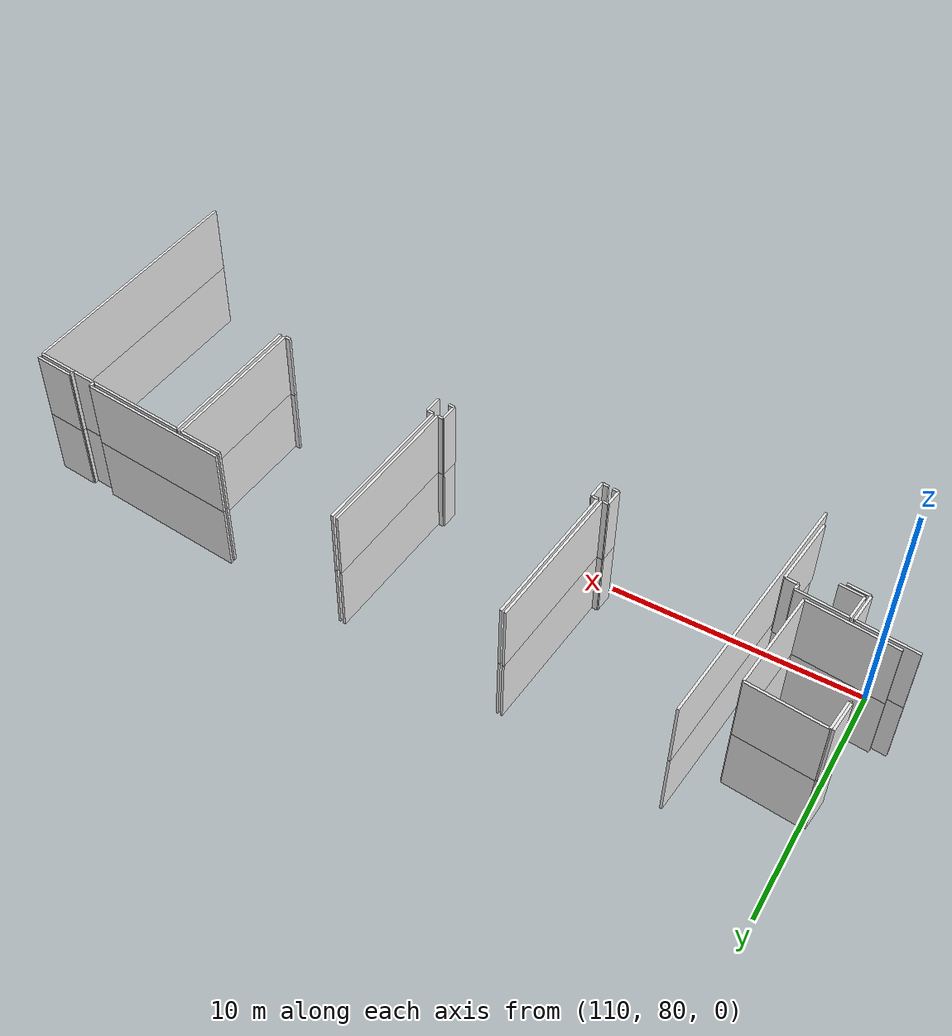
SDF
<sdf version="1.6">
 <world name="default">
  <model name="wall_134.8_82.6_1.5">
   <static>true</static>
   <pose>134.79000000000815 82.63500000000931 1.5 0 0 1.4692789369105257</pose>
   <link name="link">
    <visual name="visual">
     <geometry><box><size>5.920481399479087 0.1 3</size></box></geometry>
     <material>
      <script><uri>file://media/materials/scripts/gazebo.material</uri><name>Gazebo/White</name></script>
     </material>
    </visual>
    <collision name="collision"><geometry><box><size>5.920481399479087 0.1 3</size></box></geometry></collision>
   </link>
  </model>
  <model name="wall_137.1_85.4_1.5">
   <static>true</static>
   <pose>137.07000000000698 85.38000000012107 1.5 0 0 -0.10066865213548881</pose>
   <link name="link">
    <visual name="visual">
     <geometry><box><size>3.9801507508674154 0.1 3</size></box></geometry>
     <material>
      <script><uri>file://media/materials/scripts/gazebo.material</uri><name>Gazebo/White</name></script>
     </material>
    </visual>
    <collision name="collision"><geometry><box><size>3.9801507508674154 0.1 3</size></box></geometry></collision>
   </link>
  </model>
  <model name="wall_139.5_85.1_1.5">
   <static>true</static>
   <pose>139.54999999998836 85.13000000012107 1.5 0 0 -0.09966865258337218</pose>
   <link name="link">
    <visual name="visual">
     <geometry><box><size>1.004987562121356 0.1 3</size></box></geometry>
     <material>
      <script><uri>file://media/materials/scripts/gazebo.material</uri><name>Gazebo/White</name></script>
     </material>
    </visual>
    <collision name="collision"><geometry><box><size>1.004987562121356 0.1 3</size></box></geometry></collision>
   </link>
  </model>
  <model name="wall_140.8_85.0_1.5">
   <static>true</static>
   <pose>140.82499999998254 85.0 1.5 0 0 -0.10286148975795871</pose>
   <link name="link">
    <visual name="visual">
     <geometry><box><size>1.5582361823586293 0.1 3</size></box></geometry>
     <material>
      <script><uri>file://media/materials/scripts/gazebo.material</uri><name>Gazebo/White</name></script>
     </material>
    </visual>
    <collision name="collision"><geometry><box><size>1.5582361823586293 0.1 3</size></box></geometry></collision>
   </link>
  </model>
  <model name="wall_141.1_80.0_1.5">
   <static>true</static>
   <pose>141.10499999998137 79.98999999999069 1.5 0 0 -1.670866626016522</pose>
   <link name="link">
    <visual name="visual">
     <geometry><box><size>9.909576176477497 0.1 3</size></box></geometry>
     <material>
      <script><uri>file://media/materials/scripts/gazebo.material</uri><name>Gazebo/White</name></script>
     </material>
    </visual>
    <collision name="collision"><geometry><box><size>9.909576176477497 0.1 3</size></box></geometry></collision>
   </link>
  </model>
  <model name="wall_134.2_79.7_1.5">
   <static>true</static>
   <pose>134.15500000002794 79.72500000009313 1.5 0 0 -0.11942892704661259</pose>
   <link name="link">
    <visual name="visual">
     <geometry><box><size>0.25179356627135296 0.1 3</size></box></geometry>
     <material>
      <script><uri>file://media/materials/scripts/gazebo.material</uri><name>Gazebo/White</name></script>
     </material>
    </visual>
    <collision name="collision"><geometry><box><size>0.25179356627135296 0.1 3</size></box></geometry></collision>
   </link>
  </model>
  <model name="wall_134.6_82.7_1.5">
   <static>true</static>
   <pose>134.5800000000163 82.65999999991618 1.5 0 0 1.4694498235315459</pose>
   <link name="link">
    <visual name="visual">
     <geometry><box><size>5.9304300011780855 0.1 3</size></box></geometry>
     <material>
      <script><uri>file://media/materials/scripts/gazebo.material</uri><name>Gazebo/White</name></script>
     </material>
    </visual>
    <collision name="collision"><geometry><box><size>5.9304300011780855 0.1 3</size></box></geometry></collision>
   </link>
  </model>
  <model name="wall_134.0_85.7_1.5">
   <static>true</static>
   <pose>133.98000000001048 85.69999999995343 1.5 0 0 3.0419240010057806</pose>
   <link name="link">
    <visual name="visual">
     <geometry><box><size>1.808977611806857 0.1 3</size></box></geometry>
     <material>
      <script><uri>file://media/materials/scripts/gazebo.material</uri><name>Gazebo/White</name></script>
     </material>
    </visual>
    <collision name="collision"><geometry><box><size>1.808977611806857 0.1 3</size></box></geometry></collision>
   </link>
  </model>
  <model name="wall_127.8_83.3_1.5">
   <static>true</static>
   <pose>127.79999999998836 83.34499999997206 1.5 0 0 -1.6719725158339418</pose>
   <link name="link">
    <visual name="visual">
     <geometry><box><size>5.940378775484714 0.1 3</size></box></geometry>
     <material>
      <script><uri>file://media/materials/scripts/gazebo.material</uri><name>Gazebo/White</name></script>
     </material>
    </visual>
    <collision name="collision"><geometry><box><size>5.940378775484714 0.1 3</size></box></geometry></collision>
   </link>
  </model>
  <model name="wall_127.6_80.4_1.5">
   <static>true</static>
   <pose>127.625 80.375 1.5 0 0 -0.11942892704661259</pose>
   <link name="link">
    <visual name="visual">
     <geometry><box><size>0.25179356627135296 0.1 3</size></box></geometry>
     <material>
      <script><uri>file://media/materials/scripts/gazebo.material</uri><name>Gazebo/White</name></script>
     </material>
    </visual>
    <collision name="collision"><geometry><box><size>0.25179356627135296 0.1 3</size></box></geometry></collision>
   </link>
  </model>
  <model name="wall_127.7_80.0_1.5">
   <static>true</static>
   <pose>127.71499999999651 80.01499999989755 1.5 0 0 -1.6718996985493473</pose>
   <link name="link">
    <visual name="visual">
     <geometry><box><size>0.693541635321099 0.1 3</size></box></geometry>
     <material>
      <script><uri>file://media/materials/scripts/gazebo.material</uri><name>Gazebo/White</name></script>
     </material>
    </visual>
    <collision name="collision"><geometry><box><size>0.693541635321099 0.1 3</size></box></geometry></collision>
   </link>
  </model>
  <model name="wall_113.3_81.1_1.5">
   <static>true</static>
   <pose>113.2949999999837 81.125 1.5 0 0 3.0438657465945953</pose>
   <link name="link">
    <visual name="visual">
     <geometry><box><size>0.512445119003853 0.1 3</size></box></geometry>
     <material>
      <script><uri>file://media/materials/scripts/gazebo.material</uri><name>Gazebo/White</name></script>
     </material>
    </visual>
    <collision name="collision"><geometry><box><size>0.512445119003853 0.1 3</size></box></geometry></collision>
   </link>
  </model>
  <model name="wall_113.1_81.3_1.5">
   <static>true</static>
   <pose>113.05499999999302 81.27499999990687 1.5 0 0 1.451367400666386</pose>
   <link name="link">
    <visual name="visual">
     <geometry><box><size>0.2517935662436123 0.1 3</size></box></geometry>
     <material>
      <script><uri>file://media/materials/scripts/gazebo.material</uri><name>Gazebo/White</name></script>
     </material>
    </visual>
    <collision name="collision"><geometry><box><size>0.2517935662436123 0.1 3</size></box></geometry></collision>
   </link>
  </model>
  <model name="wall_112.1_81.5_1.5">
   <static>true</static>
   <pose>112.05000000001746 81.5 1.5 0 0 3.04386574613964</pose>
   <link name="link">
    <visual name="visual">
     <geometry><box><size>2.0497804760483525 0.1 3</size></box></geometry>
     <material>
      <script><uri>file://media/materials/scripts/gazebo.material</uri><name>Gazebo/White</name></script>
     </material>
    </visual>
    <collision name="collision"><geometry><box><size>2.0497804760483525 0.1 3</size></box></geometry></collision>
   </link>
  </model>
  <model name="wall_111.0_81.1_1.5">
   <static>true</static>
   <pose>110.97500000000582 81.0800000000745 1.5 0 0 -1.676173766022158</pose>
   <link name="link">
    <visual name="visual">
     <geometry><box><size>1.0458011283639057 0.1 3</size></box></geometry>
     <material>
      <script><uri>file://media/materials/scripts/gazebo.material</uri><name>Gazebo/White</name></script>
     </material>
    </visual>
    <collision name="collision"><geometry><box><size>1.0458011283639057 0.1 3</size></box></geometry></collision>
   </link>
  </model>
  <model name="wall_111.4_80.5_1.5">
   <static>true</static>
   <pose>111.39499999998952 80.51500000013039 1.5 0 0 -0.09445493523843698</pose>
   <link name="link">
    <visual name="visual">
     <geometry><box><size>0.9542536350443193 0.1 3</size></box></geometry>
     <material>
      <script><uri>file://media/materials/scripts/gazebo.material</uri><name>Gazebo/White</name></script>
     </material>
    </visual>
    <collision name="collision"><geometry><box><size>0.9542536350443193 0.1 3</size></box></geometry></collision>
   </link>
  </model>
  <model name="wall_109.7_81.7_1.5">
   <static>true</static>
   <pose>109.6699999999837 81.73999999999069 1.5 0 0 3.041924001199486</pose>
   <link name="link">
    <visual name="visual">
     <geometry><box><size>2.411970149068087 0.1 3</size></box></geometry>
     <material>
      <script><uri>file://media/materials/scripts/gazebo.material</uri><name>Gazebo/White</name></script>
     </material>
    </visual>
    <collision name="collision"><geometry><box><size>2.411970149068087 0.1 3</size></box></geometry></collision>
   </link>
  </model>
  <model name="wall_111.2_80.4_1.5">
   <static>true</static>
   <pose>111.20000000001164 80.38500000000931 1.5 0 0 3.041924000752843</pose>
   <link name="link">
    <visual name="visual">
     <geometry><box><size>0.9044888059555555 0.1 3</size></box></geometry>
     <material>
      <script><uri>file://media/materials/scripts/gazebo.material</uri><name>Gazebo/White</name></script>
     </material>
    </visual>
    <collision name="collision"><geometry><box><size>0.9044888059555555 0.1 3</size></box></geometry></collision>
   </link>
  </model>
  <model name="wall_110.8_81.0_1.5">
   <static>true</static>
   <pose>110.80999999999767 81.0250000001397 1.5 0 0 1.470295727739453</pose>
   <link name="link">
    <visual name="visual">
     <geometry><box><size>1.1960351164852516 0.1 3</size></box></geometry>
     <material>
      <script><uri>file://media/materials/scripts/gazebo.material</uri><name>Gazebo/White</name></script>
     </material>
    </visual>
    <collision name="collision"><geometry><box><size>1.1960351164852516 0.1 3</size></box></geometry></collision>
   </link>
  </model>
  <model name="wall_109.8_85.4_1.5">
   <static>true</static>
   <pose>109.79999999998836 85.36500000022352 1.5 0 0 -1.666503034878009</pose>
   <link name="link">
    <visual name="visual">
     <geometry><box><size>1.2557467897625232 0.1 3</size></box></geometry>
     <material>
      <script><uri>file://media/materials/scripts/gazebo.material</uri><name>Gazebo/White</name></script>
     </material>
    </visual>
    <collision name="collision"><geometry><box><size>1.2557467897625232 0.1 3</size></box></geometry></collision>
   </link>
  </model>
  <model name="wall_109.8_84.7_1.5">
   <static>true</static>
   <pose>109.78500000000349 84.73500000010245 1.5 0 0 -0.11065722380033888</pose>
   <link name="link">
    <visual name="visual">
     <geometry><box><size>0.0905538514335692 0.1 3</size></box></geometry>
     <material>
      <script><uri>file://media/materials/scripts/gazebo.material</uri><name>Gazebo/White</name></script>
     </material>
    </visual>
    <collision name="collision"><geometry><box><size>0.0905538514335692 0.1 3</size></box></geometry></collision>
   </link>
  </model>
  <model name="wall_109.9_85.4_1.5">
   <static>true</static>
   <pose>109.89500000001863 85.35499999998137 1.5 0 0 1.4671688667943394</pose>
   <link name="link">
    <visual name="visual">
     <geometry><box><size>1.2567418191503021 0.1 3</size></box></geometry>
     <material>
      <script><uri>file://media/materials/scripts/gazebo.material</uri><name>Gazebo/White</name></script>
     </material>
    </visual>
    <collision name="collision"><geometry><box><size>1.2567418191503021 0.1 3</size></box></geometry></collision>
   </link>
  </model>
  <model name="wall_111.5_85.8_1.5">
   <static>true</static>
   <pose>111.50500000000466 85.82000000006519 1.5 0 0 -0.10319202030580511</pose>
   <link name="link">
    <visual name="visual">
     <geometry><box><size>3.1065253901571874 0.1 3</size></box></geometry>
     <material>
      <script><uri>file://media/materials/scripts/gazebo.material</uri><name>Gazebo/White</name></script>
     </material>
    </visual>
    <collision name="collision"><geometry><box><size>3.1065253901571874 0.1 3</size></box></geometry></collision>
   </link>
  </model>
  <model name="wall_112.8_83.7_1.5">
   <static>true</static>
   <pose>112.84500000000116 83.65500000002794 1.5 0 0 -1.6726866492791923</pose>
   <link name="link">
    <visual name="visual">
     <geometry><box><size>4.0309056056823005 0.1 3</size></box></geometry>
     <material>
      <script><uri>file://media/materials/scripts/gazebo.material</uri><name>Gazebo/White</name></script>
     </material>
    </visual>
    <collision name="collision"><geometry><box><size>4.0309056056823005 0.1 3</size></box></geometry></collision>
   </link>
  </model>
  <model name="wall_110.9_81.8_1.5">
   <static>true</static>
   <pose>110.85000000000582 81.82999999984168 1.5 0 0 3.041370903846408</pose>
   <link name="link">
    <visual name="visual">
     <geometry><box><size>3.5980550301548777 0.1 3</size></box></geometry>
     <material>
      <script><uri>file://media/materials/scripts/gazebo.material</uri><name>Gazebo/White</name></script>
     </material>
    </visual>
    <collision name="collision"><geometry><box><size>3.5980550301548777 0.1 3</size></box></geometry></collision>
   </link>
  </model>
  <model name="wall_127.1_79.7_1.5">
   <static>true</static>
   <pose>127.10999999998603 79.7300000002142 1.5 0 0 3.0584514216210654</pose>
   <link name="link">
    <visual name="visual">
     <geometry><box><size>0.2408318915681117 0.1 3</size></box></geometry>
     <material>
      <script><uri>file://media/materials/scripts/gazebo.material</uri><name>Gazebo/White</name></script>
     </material>
    </visual>
    <collision name="collision"><geometry><box><size>0.2408318915681117 0.1 3</size></box></geometry></collision>
   </link>
  </model>
  <model name="wall_127.0_80.1_1.5">
   <static>true</static>
   <pose>127.02499999999418 80.08500000019558 1.5 0 0 1.469692955040446</pose>
   <link name="link">
    <visual name="visual">
     <geometry><box><size>0.693541635321099 0.1 3</size></box></geometry>
     <material>
      <script><uri>file://media/materials/scripts/gazebo.material</uri><name>Gazebo/White</name></script>
     </material>
    </visual>
    <collision name="collision"><geometry><box><size>0.693541635321099 0.1 3</size></box></geometry></collision>
   </link>
  </model>
  <model name="wall_127.2_80.4_1.5">
   <static>true</static>
   <pose>127.17999999999302 80.42000000015832 1.5 0 0 -0.08314123196872766</pose>
   <link name="link">
    <visual name="visual">
     <geometry><box><size>0.2408318915681117 0.1 3</size></box></geometry>
     <material>
      <script><uri>file://media/materials/scripts/gazebo.material</uri><name>Gazebo/White</name></script>
     </material>
    </visual>
    <collision name="collision"><geometry><box><size>0.2408318915681117 0.1 3</size></box></geometry></collision>
   </link>
  </model>
  <model name="wall_127.6_83.4_1.5">
   <static>true</static>
   <pose>127.60000000000582 83.36499999999069 1.5 0 0 1.469620137746103</pose>
   <link name="link">
    <visual name="visual">
     <geometry><box><size>5.940378775490593 0.1 3</size></box></geometry>
     <material>
      <script><uri>file://media/materials/scripts/gazebo.material</uri><name>Gazebo/White</name></script>
     </material>
    </visual>
    <collision name="collision"><geometry><box><size>5.940378775490593 0.1 3</size></box></geometry></collision>
   </link>
  </model>
  <model name="wall_120.8_84.0_1.5">
   <static>true</static>
   <pose>120.82000000000698 84.0449999999255 1.5 0 0 -1.6719725158260241</pose>
   <link name="link">
    <visual name="visual">
     <geometry><box><size>5.940378775947993 0.1 3</size></box></geometry>
     <material>
      <script><uri>file://media/materials/scripts/gazebo.material</uri><name>Gazebo/White</name></script>
     </material>
    </visual>
    <collision name="collision"><geometry><box><size>5.940378775947993 0.1 3</size></box></geometry></collision>
   </link>
  </model>
  <model name="wall_120.6_81.1_1.5">
   <static>true</static>
   <pose>120.64500000001863 81.07999999984168 1.5 0 0 -0.07982998578626932</pose>
   <link name="link">
    <visual name="visual">
     <geometry><box><size>0.25079872408117443 0.1 3</size></box></geometry>
     <material>
      <script><uri>file://media/materials/scripts/gazebo.material</uri><name>Gazebo/White</name></script>
     </material>
    </visual>
    <collision name="collision"><geometry><box><size>0.25079872408117443 0.1 3</size></box></geometry></collision>
   </link>
  </model>
  <model name="wall_120.7_80.7_1.5">
   <static>true</static>
   <pose>120.73500000001513 80.71999999997206 1.5 0 0 -1.670464979335457</pose>
   <link name="link">
    <visual name="visual">
     <geometry><box><size>0.7034912932011471 0.1 3</size></box></geometry>
     <material>
      <script><uri>file://media/materials/scripts/gazebo.material</uri><name>Gazebo/White</name></script>
     </material>
    </visual>
    <collision name="collision"><geometry><box><size>0.7034912932011471 0.1 3</size></box></geometry></collision>
   </link>
  </model>
  <model name="wall_120.6_80.4_1.5">
   <static>true</static>
   <pose>120.57500000001164 80.38500000000931 1.5 0 0 3.0221637283793843</pose>
   <link name="link">
    <visual name="visual">
     <geometry><box><size>0.2517935662158716 0.1 3</size></box></geometry>
     <material>
      <script><uri>file://media/materials/scripts/gazebo.material</uri><name>Gazebo/White</name></script>
     </material>
    </visual>
    <collision name="collision"><geometry><box><size>0.2517935662158716 0.1 3</size></box></geometry></collision>
   </link>
  </model>
  <model name="wall_120.2_80.4_1.5">
   <static>true</static>
   <pose>120.15500000002794 80.42999999993481 1.5 0 0 3.061762667803524</pose>
   <link name="link">
    <visual name="visual">
     <geometry><box><size>0.25079872408117443 0.1 3</size></box></geometry>
     <material>
      <script><uri>file://media/materials/scripts/gazebo.material</uri><name>Gazebo/White</name></script>
     </material>
    </visual>
    <collision name="collision"><geometry><box><size>0.25079872408117443 0.1 3</size></box></geometry></collision>
   </link>
  </model>
  <model name="wall_120.1_80.8_1.5">
   <static>true</static>
   <pose>120.06500000000233 80.78499999991618 1.5 0 0 1.4696929551239455</pose>
   <link name="link">
    <visual name="visual">
     <geometry><box><size>0.6935416353152241 0.1 3</size></box></geometry>
     <material>
      <script><uri>file://media/materials/scripts/gazebo.material</uri><name>Gazebo/White</name></script>
     </material>
    </visual>
    <collision name="collision"><geometry><box><size>0.6935416353152241 0.1 3</size></box></geometry></collision>
   </link>
  </model>
  <model name="wall_120.2_81.1_1.5">
   <static>true</static>
   <pose>120.22499999997672 81.11999999987893 1.5 0 0 -0.07982998578626932</pose>
   <link name="link">
    <visual name="visual">
     <geometry><box><size>0.25079872408117443 0.1 3</size></box></geometry>
     <material>
      <script><uri>file://media/materials/scripts/gazebo.material</uri><name>Gazebo/White</name></script>
     </material>
    </visual>
    <collision name="collision"><geometry><box><size>0.25079872408117443 0.1 3</size></box></geometry></collision>
   </link>
  </model>
  <model name="wall_120.6_84.1_1.5">
   <static>true</static>
   <pose>120.64999999999418 84.06499999994412 1.5 0 0 1.4696201377540206</pose>
   <link name="link">
    <visual name="visual">
     <geometry><box><size>5.940378775953872 0.1 3</size></box></geometry>
     <material>
      <script><uri>file://media/materials/scripts/gazebo.material</uri><name>Gazebo/White</name></script>
     </material>
    </visual>
    <collision name="collision"><geometry><box><size>5.940378775953872 0.1 3</size></box></geometry></collision>
   </link>
  </model>
  <model name="wall_113.9_82.7_1.5">
   <static>true</static>
   <pose>113.90999999997439 82.73999999999069 1.5 0 0 -1.6716673835126197</pose>
   <link name="link">
    <visual name="visual">
     <geometry><box><size>9.93047833727022 0.1 3</size></box></geometry>
     <material>
      <script><uri>file://media/materials/scripts/gazebo.material</uri><name>Gazebo/White</name></script>
     </material>
    </visual>
    <collision name="collision"><geometry><box><size>9.93047833727022 0.1 3</size></box></geometry></collision>
   </link>
  </model>
  <model name="wall_136.1_85.7_1.5">
   <static>true</static>
   <pose>136.08499999999185 85.67999999993481 1.5 0 0 -0.1001661649028647</pose>
   <link name="link">
    <visual name="visual">
     <geometry><box><size>6.0000749995706855 0.1 3</size></box></geometry>
     <material>
      <script><uri>file://media/materials/scripts/gazebo.material</uri><name>Gazebo/White</name></script>
     </material>
    </visual>
    <collision name="collision"><geometry><box><size>6.0000749995706855 0.1 3</size></box></geometry></collision>
   </link>
  </model>
  <model name="wall_139.1_85.3_1.5">
   <static>true</static>
   <pose>139.05999999999767 85.28000000002794 1.5 0 0 -1.670464979516584</pose>
   <link name="link">
    <visual name="visual">
     <geometry><box><size>0.20099751214626105 0.1 3</size></box></geometry>
     <material>
      <script><uri>file://media/materials/scripts/gazebo.material</uri><name>Gazebo/White</name></script>
     </material>
    </visual>
    <collision name="collision"><geometry><box><size>0.20099751214626105 0.1 3</size></box></geometry></collision>
   </link>
  </model>
  <model name="wall_140.1_85.2_1.5">
   <static>true</static>
   <pose>140.05999999999767 85.17999999993481 1.5 0 0 1.471127674073209</pose>
   <link name="link">
    <visual name="visual">
     <geometry><box><size>0.20099751214626105 0.1 3</size></box></geometry>
     <material>
      <script><uri>file://media/materials/scripts/gazebo.material</uri><name>Gazebo/White</name></script>
     </material>
    </visual>
    <collision name="collision"><geometry><box><size>0.20099751214626105 0.1 3</size></box></geometry></collision>
   </link>
  </model>
  <model name="wall_140.8_85.2_1.5">
   <static>true</static>
   <pose>140.84500000000116 85.19999999995343 1.5 0 0 -0.10286148946069955</pose>
   <link name="link">
    <visual name="visual">
     <geometry><box><size>1.558236182310815 0.1 3</size></box></geometry>
     <material>
      <script><uri>file://media/materials/scripts/gazebo.material</uri><name>Gazebo/White</name></script>
     </material>
    </visual>
    <collision name="collision"><geometry><box><size>1.558236182310815 0.1 3</size></box></geometry></collision>
   </link>
  </model>
  <model name="wall_134.8_82.6_4.5">
   <static>true</static>
   <pose>134.79000000000815 82.63500000000931 4.5 0 0 1.4692789369105257</pose>
   <link name="link">
    <visual name="visual">
     <geometry><box><size>5.920481399479087 0.1 3</size></box></geometry>
     <material>
      <script><uri>file://media/materials/scripts/gazebo.material</uri><name>Gazebo/White</name></script>
     </material>
    </visual>
    <collision name="collision"><geometry><box><size>5.920481399479087 0.1 3</size></box></geometry></collision>
   </link>
  </model>
  <model name="wall_137.1_85.4_4.5">
   <static>true</static>
   <pose>137.07000000000698 85.38000000012107 4.5 0 0 -0.10066865213548881</pose>
   <link name="link">
    <visual name="visual">
     <geometry><box><size>3.9801507508674154 0.1 3</size></box></geometry>
     <material>
      <script><uri>file://media/materials/scripts/gazebo.material</uri><name>Gazebo/White</name></script>
     </material>
    </visual>
    <collision name="collision"><geometry><box><size>3.9801507508674154 0.1 3</size></box></geometry></collision>
   </link>
  </model>
  <model name="wall_139.5_85.1_4.5">
   <static>true</static>
   <pose>139.54999999998836 85.13000000012107 4.5 0 0 -0.09966865258337218</pose>
   <link name="link">
    <visual name="visual">
     <geometry><box><size>1.004987562121356 0.1 3</size></box></geometry>
     <material>
      <script><uri>file://media/materials/scripts/gazebo.material</uri><name>Gazebo/White</name></script>
     </material>
    </visual>
    <collision name="collision"><geometry><box><size>1.004987562121356 0.1 3</size></box></geometry></collision>
   </link>
  </model>
  <model name="wall_140.8_85.0_4.5">
   <static>true</static>
   <pose>140.82499999998254 85.0 4.5 0 0 -0.10286148975795871</pose>
   <link name="link">
    <visual name="visual">
     <geometry><box><size>1.5582361823586293 0.1 3</size></box></geometry>
     <material>
      <script><uri>file://media/materials/scripts/gazebo.material</uri><name>Gazebo/White</name></script>
     </material>
    </visual>
    <collision name="collision"><geometry><box><size>1.5582361823586293 0.1 3</size></box></geometry></collision>
   </link>
  </model>
  <model name="wall_141.1_80.0_4.5">
   <static>true</static>
   <pose>141.10499999998137 79.98999999999069 4.5 0 0 -1.670866626016522</pose>
   <link name="link">
    <visual name="visual">
     <geometry><box><size>9.909576176477497 0.1 3</size></box></geometry>
     <material>
      <script><uri>file://media/materials/scripts/gazebo.material</uri><name>Gazebo/White</name></script>
     </material>
    </visual>
    <collision name="collision"><geometry><box><size>9.909576176477497 0.1 3</size></box></geometry></collision>
   </link>
  </model>
  <model name="wall_134.2_79.7_4.5">
   <static>true</static>
   <pose>134.15500000002794 79.72500000009313 4.5 0 0 -0.11942892704661259</pose>
   <link name="link">
    <visual name="visual">
     <geometry><box><size>0.25179356627135296 0.1 3</size></box></geometry>
     <material>
      <script><uri>file://media/materials/scripts/gazebo.material</uri><name>Gazebo/White</name></script>
     </material>
    </visual>
    <collision name="collision"><geometry><box><size>0.25179356627135296 0.1 3</size></box></geometry></collision>
   </link>
  </model>
  <model name="wall_134.6_82.7_4.5">
   <static>true</static>
   <pose>134.5800000000163 82.65999999991618 4.5 0 0 1.4694498235315459</pose>
   <link name="link">
    <visual name="visual">
     <geometry><box><size>5.9304300011780855 0.1 3</size></box></geometry>
     <material>
      <script><uri>file://media/materials/scripts/gazebo.material</uri><name>Gazebo/White</name></script>
     </material>
    </visual>
    <collision name="collision"><geometry><box><size>5.9304300011780855 0.1 3</size></box></geometry></collision>
   </link>
  </model>
  <model name="wall_134.0_85.7_4.5">
   <static>true</static>
   <pose>133.98000000001048 85.69999999995343 4.5 0 0 3.0419240010057806</pose>
   <link name="link">
    <visual name="visual">
     <geometry><box><size>1.808977611806857 0.1 3</size></box></geometry>
     <material>
      <script><uri>file://media/materials/scripts/gazebo.material</uri><name>Gazebo/White</name></script>
     </material>
    </visual>
    <collision name="collision"><geometry><box><size>1.808977611806857 0.1 3</size></box></geometry></collision>
   </link>
  </model>
  <model name="wall_127.8_83.3_4.5">
   <static>true</static>
   <pose>127.79999999998836 83.34499999997206 4.5 0 0 -1.6719725158339418</pose>
   <link name="link">
    <visual name="visual">
     <geometry><box><size>5.940378775484714 0.1 3</size></box></geometry>
     <material>
      <script><uri>file://media/materials/scripts/gazebo.material</uri><name>Gazebo/White</name></script>
     </material>
    </visual>
    <collision name="collision"><geometry><box><size>5.940378775484714 0.1 3</size></box></geometry></collision>
   </link>
  </model>
  <model name="wall_127.6_80.4_4.5">
   <static>true</static>
   <pose>127.625 80.375 4.5 0 0 -0.11942892704661259</pose>
   <link name="link">
    <visual name="visual">
     <geometry><box><size>0.25179356627135296 0.1 3</size></box></geometry>
     <material>
      <script><uri>file://media/materials/scripts/gazebo.material</uri><name>Gazebo/White</name></script>
     </material>
    </visual>
    <collision name="collision"><geometry><box><size>0.25179356627135296 0.1 3</size></box></geometry></collision>
   </link>
  </model>
  <model name="wall_127.7_80.0_4.5">
   <static>true</static>
   <pose>127.71499999999651 80.01499999989755 4.5 0 0 -1.6718996985493473</pose>
   <link name="link">
    <visual name="visual">
     <geometry><box><size>0.693541635321099 0.1 3</size></box></geometry>
     <material>
      <script><uri>file://media/materials/scripts/gazebo.material</uri><name>Gazebo/White</name></script>
     </material>
    </visual>
    <collision name="collision"><geometry><box><size>0.693541635321099 0.1 3</size></box></geometry></collision>
   </link>
  </model>
  <model name="wall_113.4_79.7_4.5">
   <static>true</static>
   <pose>113.40499999999884 79.70999999996275 4.5 0 0 1.4668557173961834</pose>
   <link name="link">
    <visual name="visual">
     <geometry><box><size>2.7950849721319257 0.1 3</size></box></geometry>
     <material>
      <script><uri>file://media/materials/scripts/gazebo.material</uri><name>Gazebo/White</name></script>
     </material>
    </visual>
    <collision name="collision"><geometry><box><size>2.7950849721319257 0.1 3</size></box></geometry></collision>
   </link>
  </model>
  <model name="wall_113.3_81.1_4.5">
   <static>true</static>
   <pose>113.2949999999837 81.125 4.5 0 0 3.0438657465945953</pose>
   <link name="link">
    <visual name="visual">
     <geometry><box><size>0.512445119003853 0.1 3</size></box></geometry>
     <material>
      <script><uri>file://media/materials/scripts/gazebo.material</uri><name>Gazebo/White</name></script>
     </material>
    </visual>
    <collision name="collision"><geometry><box><size>0.512445119003853 0.1 3</size></box></geometry></collision>
   </link>
  </model>
  <model name="wall_113.1_81.3_4.5">
   <static>true</static>
   <pose>113.05499999999302 81.27499999990687 4.5 0 0 1.451367400666386</pose>
   <link name="link">
    <visual name="visual">
     <geometry><box><size>0.2517935662436123 0.1 3</size></box></geometry>
     <material>
      <script><uri>file://media/materials/scripts/gazebo.material</uri><name>Gazebo/White</name></script>
     </material>
    </visual>
    <collision name="collision"><geometry><box><size>0.2517935662436123 0.1 3</size></box></geometry></collision>
   </link>
  </model>
  <model name="wall_112.1_81.5_4.5">
   <static>true</static>
   <pose>112.05000000001746 81.5 4.5 0 0 3.04386574613964</pose>
   <link name="link">
    <visual name="visual">
     <geometry><box><size>2.0497804760483525 0.1 3</size></box></geometry>
     <material>
      <script><uri>file://media/materials/scripts/gazebo.material</uri><name>Gazebo/White</name></script>
     </material>
    </visual>
    <collision name="collision"><geometry><box><size>2.0497804760483525 0.1 3</size></box></geometry></collision>
   </link>
  </model>
  <model name="wall_111.0_81.1_4.5">
   <static>true</static>
   <pose>110.97500000000582 81.0800000000745 4.5 0 0 -1.676173766022158</pose>
   <link name="link">
    <visual name="visual">
     <geometry><box><size>1.0458011283639057 0.1 3</size></box></geometry>
     <material>
      <script><uri>file://media/materials/scripts/gazebo.material</uri><name>Gazebo/White</name></script>
     </material>
    </visual>
    <collision name="collision"><geometry><box><size>1.0458011283639057 0.1 3</size></box></geometry></collision>
   </link>
  </model>
  <model name="wall_111.4_80.5_4.5">
   <static>true</static>
   <pose>111.39499999998952 80.51500000013039 4.5 0 0 -0.09445493523843698</pose>
   <link name="link">
    <visual name="visual">
     <geometry><box><size>0.9542536350443193 0.1 3</size></box></geometry>
     <material>
      <script><uri>file://media/materials/scripts/gazebo.material</uri><name>Gazebo/White</name></script>
     </material>
    </visual>
    <collision name="collision"><geometry><box><size>0.9542536350443193 0.1 3</size></box></geometry></collision>
   </link>
  </model>
  <model name="wall_109.7_81.7_4.5">
   <static>true</static>
   <pose>109.6699999999837 81.73999999999069 4.5 0 0 3.041924001199486</pose>
   <link name="link">
    <visual name="visual">
     <geometry><box><size>2.411970149068087 0.1 3</size></box></geometry>
     <material>
      <script><uri>file://media/materials/scripts/gazebo.material</uri><name>Gazebo/White</name></script>
     </material>
    </visual>
    <collision name="collision"><geometry><box><size>2.411970149068087 0.1 3</size></box></geometry></collision>
   </link>
  </model>
  <model name="wall_111.2_80.4_4.5">
   <static>true</static>
   <pose>111.20000000001164 80.38500000000931 4.5 0 0 3.041924000752843</pose>
   <link name="link">
    <visual name="visual">
     <geometry><box><size>0.9044888059555555 0.1 3</size></box></geometry>
     <material>
      <script><uri>file://media/materials/scripts/gazebo.material</uri><name>Gazebo/White</name></script>
     </material>
    </visual>
    <collision name="collision"><geometry><box><size>0.9044888059555555 0.1 3</size></box></geometry></collision>
   </link>
  </model>
  <model name="wall_110.8_81.0_4.5">
   <static>true</static>
   <pose>110.80999999999767 81.0250000001397 4.5 0 0 1.470295727739453</pose>
   <link name="link">
    <visual name="visual">
     <geometry><box><size>1.1960351164852516 0.1 3</size></box></geometry>
     <material>
      <script><uri>file://media/materials/scripts/gazebo.material</uri><name>Gazebo/White</name></script>
     </material>
    </visual>
    <collision name="collision"><geometry><box><size>1.1960351164852516 0.1 3</size></box></geometry></collision>
   </link>
  </model>
  <model name="wall_109.8_85.4_4.5">
   <static>true</static>
   <pose>109.79999999998836 85.36500000022352 4.5 0 0 -1.666503034878009</pose>
   <link name="link">
    <visual name="visual">
     <geometry><box><size>1.2557467897625232 0.1 3</size></box></geometry>
     <material>
      <script><uri>file://media/materials/scripts/gazebo.material</uri><name>Gazebo/White</name></script>
     </material>
    </visual>
    <collision name="collision"><geometry><box><size>1.2557467897625232 0.1 3</size></box></geometry></collision>
   </link>
  </model>
  <model name="wall_109.8_84.7_4.5">
   <static>true</static>
   <pose>109.78500000000349 84.73500000010245 4.5 0 0 -0.11065722380033888</pose>
   <link name="link">
    <visual name="visual">
     <geometry><box><size>0.0905538514335692 0.1 3</size></box></geometry>
     <material>
      <script><uri>file://media/materials/scripts/gazebo.material</uri><name>Gazebo/White</name></script>
     </material>
    </visual>
    <collision name="collision"><geometry><box><size>0.0905538514335692 0.1 3</size></box></geometry></collision>
   </link>
  </model>
  <model name="wall_109.9_85.4_4.5">
   <static>true</static>
   <pose>109.89500000001863 85.35499999998137 4.5 0 0 1.4671688667943394</pose>
   <link name="link">
    <visual name="visual">
     <geometry><box><size>1.2567418191503021 0.1 3</size></box></geometry>
     <material>
      <script><uri>file://media/materials/scripts/gazebo.material</uri><name>Gazebo/White</name></script>
     </material>
    </visual>
    <collision name="collision"><geometry><box><size>1.2567418191503021 0.1 3</size></box></geometry></collision>
   </link>
  </model>
  <model name="wall_111.5_85.8_4.5">
   <static>true</static>
   <pose>111.50500000000466 85.82000000006519 4.5 0 0 -0.10319202030580511</pose>
   <link name="link">
    <visual name="visual">
     <geometry><box><size>3.1065253901571874 0.1 3</size></box></geometry>
     <material>
      <script><uri>file://media/materials/scripts/gazebo.material</uri><name>Gazebo/White</name></script>
     </material>
    </visual>
    <collision name="collision"><geometry><box><size>3.1065253901571874 0.1 3</size></box></geometry></collision>
   </link>
  </model>
  <model name="wall_112.8_83.7_4.5">
   <static>true</static>
   <pose>112.84500000000116 83.65500000002794 4.5 0 0 -1.6726866492791923</pose>
   <link name="link">
    <visual name="visual">
     <geometry><box><size>4.0309056056823005 0.1 3</size></box></geometry>
     <material>
      <script><uri>file://media/materials/scripts/gazebo.material</uri><name>Gazebo/White</name></script>
     </material>
    </visual>
    <collision name="collision"><geometry><box><size>4.0309056056823005 0.1 3</size></box></geometry></collision>
   </link>
  </model>
  <model name="wall_110.9_81.8_4.5">
   <static>true</static>
   <pose>110.85000000000582 81.82999999984168 4.5 0 0 3.041370903846408</pose>
   <link name="link">
    <visual name="visual">
     <geometry><box><size>3.5980550301548777 0.1 3</size></box></geometry>
     <material>
      <script><uri>file://media/materials/scripts/gazebo.material</uri><name>Gazebo/White</name></script>
     </material>
    </visual>
    <collision name="collision"><geometry><box><size>3.5980550301548777 0.1 3</size></box></geometry></collision>
   </link>
  </model>
  <model name="wall_127.1_79.7_4.5">
   <static>true</static>
   <pose>127.10999999998603 79.7300000002142 4.5 0 0 3.0584514216210654</pose>
   <link name="link">
    <visual name="visual">
     <geometry><box><size>0.2408318915681117 0.1 3</size></box></geometry>
     <material>
      <script><uri>file://media/materials/scripts/gazebo.material</uri><name>Gazebo/White</name></script>
     </material>
    </visual>
    <collision name="collision"><geometry><box><size>0.2408318915681117 0.1 3</size></box></geometry></collision>
   </link>
  </model>
  <model name="wall_127.0_80.1_4.5">
   <static>true</static>
   <pose>127.02499999999418 80.08500000019558 4.5 0 0 1.469692955040446</pose>
   <link name="link">
    <visual name="visual">
     <geometry><box><size>0.693541635321099 0.1 3</size></box></geometry>
     <material>
      <script><uri>file://media/materials/scripts/gazebo.material</uri><name>Gazebo/White</name></script>
     </material>
    </visual>
    <collision name="collision"><geometry><box><size>0.693541635321099 0.1 3</size></box></geometry></collision>
   </link>
  </model>
  <model name="wall_127.2_80.4_4.5">
   <static>true</static>
   <pose>127.17999999999302 80.42000000015832 4.5 0 0 -0.08314123196872766</pose>
   <link name="link">
    <visual name="visual">
     <geometry><box><size>0.2408318915681117 0.1 3</size></box></geometry>
     <material>
      <script><uri>file://media/materials/scripts/gazebo.material</uri><name>Gazebo/White</name></script>
     </material>
    </visual>
    <collision name="collision"><geometry><box><size>0.2408318915681117 0.1 3</size></box></geometry></collision>
   </link>
  </model>
  <model name="wall_127.6_83.4_4.5">
   <static>true</static>
   <pose>127.60000000000582 83.36499999999069 4.5 0 0 1.469620137746103</pose>
   <link name="link">
    <visual name="visual">
     <geometry><box><size>5.940378775490593 0.1 3</size></box></geometry>
     <material>
      <script><uri>file://media/materials/scripts/gazebo.material</uri><name>Gazebo/White</name></script>
     </material>
    </visual>
    <collision name="collision"><geometry><box><size>5.940378775490593 0.1 3</size></box></geometry></collision>
   </link>
  </model>
  <model name="wall_120.8_84.0_4.5">
   <static>true</static>
   <pose>120.82000000000698 84.0449999999255 4.5 0 0 -1.6719725158260241</pose>
   <link name="link">
    <visual name="visual">
     <geometry><box><size>5.940378775947993 0.1 3</size></box></geometry>
     <material>
      <script><uri>file://media/materials/scripts/gazebo.material</uri><name>Gazebo/White</name></script>
     </material>
    </visual>
    <collision name="collision"><geometry><box><size>5.940378775947993 0.1 3</size></box></geometry></collision>
   </link>
  </model>
  <model name="wall_120.6_81.1_4.5">
   <static>true</static>
   <pose>120.64500000001863 81.07999999984168 4.5 0 0 -0.07982998578626932</pose>
   <link name="link">
    <visual name="visual">
     <geometry><box><size>0.25079872408117443 0.1 3</size></box></geometry>
     <material>
      <script><uri>file://media/materials/scripts/gazebo.material</uri><name>Gazebo/White</name></script>
     </material>
    </visual>
    <collision name="collision"><geometry><box><size>0.25079872408117443 0.1 3</size></box></geometry></collision>
   </link>
  </model>
  <model name="wall_120.7_80.7_4.5">
   <static>true</static>
   <pose>120.73500000001513 80.71999999997206 4.5 0 0 -1.670464979335457</pose>
   <link name="link">
    <visual name="visual">
     <geometry><box><size>0.7034912932011471 0.1 3</size></box></geometry>
     <material>
      <script><uri>file://media/materials/scripts/gazebo.material</uri><name>Gazebo/White</name></script>
     </material>
    </visual>
    <collision name="collision"><geometry><box><size>0.7034912932011471 0.1 3</size></box></geometry></collision>
   </link>
  </model>
  <model name="wall_120.6_80.4_4.5">
   <static>true</static>
   <pose>120.57500000001164 80.38500000000931 4.5 0 0 3.0221637283793843</pose>
   <link name="link">
    <visual name="visual">
     <geometry><box><size>0.2517935662158716 0.1 3</size></box></geometry>
     <material>
      <script><uri>file://media/materials/scripts/gazebo.material</uri><name>Gazebo/White</name></script>
     </material>
    </visual>
    <collision name="collision"><geometry><box><size>0.2517935662158716 0.1 3</size></box></geometry></collision>
   </link>
  </model>
  <model name="wall_120.2_80.4_4.5">
   <static>true</static>
   <pose>120.15500000002794 80.42999999993481 4.5 0 0 3.061762667803524</pose>
   <link name="link">
    <visual name="visual">
     <geometry><box><size>0.25079872408117443 0.1 3</size></box></geometry>
     <material>
      <script><uri>file://media/materials/scripts/gazebo.material</uri><name>Gazebo/White</name></script>
     </material>
    </visual>
    <collision name="collision"><geometry><box><size>0.25079872408117443 0.1 3</size></box></geometry></collision>
   </link>
  </model>
  <model name="wall_120.1_80.8_4.5">
   <static>true</static>
   <pose>120.06500000000233 80.78499999991618 4.5 0 0 1.4696929551239455</pose>
   <link name="link">
    <visual name="visual">
     <geometry><box><size>0.6935416353152241 0.1 3</size></box></geometry>
     <material>
      <script><uri>file://media/materials/scripts/gazebo.material</uri><name>Gazebo/White</name></script>
     </material>
    </visual>
    <collision name="collision"><geometry><box><size>0.6935416353152241 0.1 3</size></box></geometry></collision>
   </link>
  </model>
  <model name="wall_120.2_81.1_4.5">
   <static>true</static>
   <pose>120.22499999997672 81.11999999987893 4.5 0 0 -0.07982998578626932</pose>
   <link name="link">
    <visual name="visual">
     <geometry><box><size>0.25079872408117443 0.1 3</size></box></geometry>
     <material>
      <script><uri>file://media/materials/scripts/gazebo.material</uri><name>Gazebo/White</name></script>
     </material>
    </visual>
    <collision name="collision"><geometry><box><size>0.25079872408117443 0.1 3</size></box></geometry></collision>
   </link>
  </model>
  <model name="wall_120.6_84.1_4.5">
   <static>true</static>
   <pose>120.64999999999418 84.06499999994412 4.5 0 0 1.4696201377540206</pose>
   <link name="link">
    <visual name="visual">
     <geometry><box><size>5.940378775953872 0.1 3</size></box></geometry>
     <material>
      <script><uri>file://media/materials/scripts/gazebo.material</uri><name>Gazebo/White</name></script>
     </material>
    </visual>
    <collision name="collision"><geometry><box><size>5.940378775953872 0.1 3</size></box></geometry></collision>
   </link>
  </model>
  <model name="wall_113.9_82.7_4.5">
   <static>true</static>
   <pose>113.90999999997439 82.73999999999069 4.5 0 0 -1.6716673835126197</pose>
   <link name="link">
    <visual name="visual">
     <geometry><box><size>9.93047833727022 0.1 3</size></box></geometry>
     <material>
      <script><uri>file://media/materials/scripts/gazebo.material</uri><name>Gazebo/White</name></script>
     </material>
    </visual>
    <collision name="collision"><geometry><box><size>9.93047833727022 0.1 3</size></box></geometry></collision>
   </link>
  </model>
  <model name="wall_136.1_85.7_4.5">
   <static>true</static>
   <pose>136.08499999999185 85.67999999993481 4.5 0 0 -0.1001661649028647</pose>
   <link name="link">
    <visual name="visual">
     <geometry><box><size>6.0000749995706855 0.1 3</size></box></geometry>
     <material>
      <script><uri>file://media/materials/scripts/gazebo.material</uri><name>Gazebo/White</name></script>
     </material>
    </visual>
    <collision name="collision"><geometry><box><size>6.0000749995706855 0.1 3</size></box></geometry></collision>
   </link>
  </model>
  <model name="wall_139.1_85.3_4.5">
   <static>true</static>
   <pose>139.05999999999767 85.28000000002794 4.5 0 0 -1.670464979516584</pose>
   <link name="link">
    <visual name="visual">
     <geometry><box><size>0.20099751214626105 0.1 3</size></box></geometry>
     <material>
      <script><uri>file://media/materials/scripts/gazebo.material</uri><name>Gazebo/White</name></script>
     </material>
    </visual>
    <collision name="collision"><geometry><box><size>0.20099751214626105 0.1 3</size></box></geometry></collision>
   </link>
  </model>
  <model name="wall_140.1_85.2_4.5">
   <static>true</static>
   <pose>140.05999999999767 85.17999999993481 4.5 0 0 1.471127674073209</pose>
   <link name="link">
    <visual name="visual">
     <geometry><box><size>0.20099751214626105 0.1 3</size></box></geometry>
     <material>
      <script><uri>file://media/materials/scripts/gazebo.material</uri><name>Gazebo/White</name></script>
     </material>
    </visual>
    <collision name="collision"><geometry><box><size>0.20099751214626105 0.1 3</size></box></geometry></collision>
   </link>
  </model>
  <model name="wall_140.8_85.2_4.5">
   <static>true</static>
   <pose>140.84500000000116 85.19999999995343 4.5 0 0 -0.10286148946069955</pose>
   <link name="link">
    <visual name="visual">
     <geometry><box><size>1.558236182310815 0.1 3</size></box></geometry>
     <material>
      <script><uri>file://media/materials/scripts/gazebo.material</uri><name>Gazebo/White</name></script>
     </material>
    </visual>
    <collision name="collision"><geometry><box><size>1.558236182310815 0.1 3</size></box></geometry></collision>
   </link>
  </model>
 </world>
</sdf>
